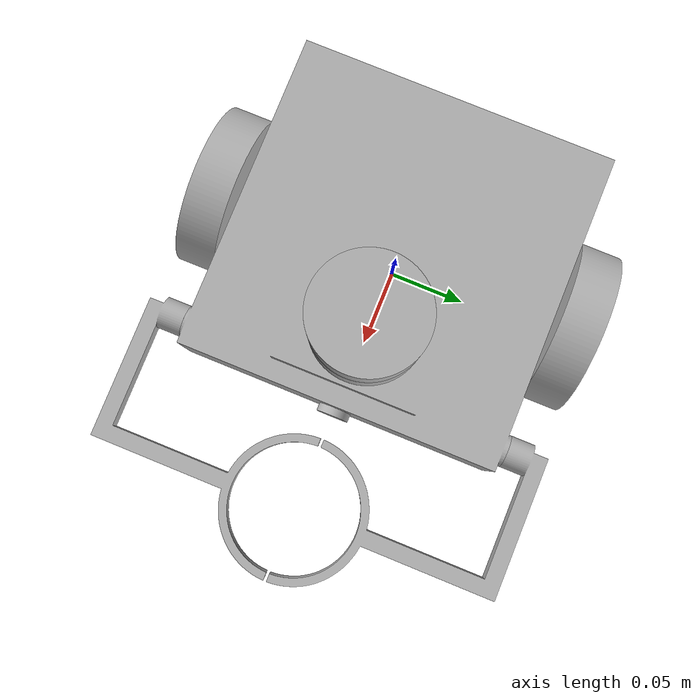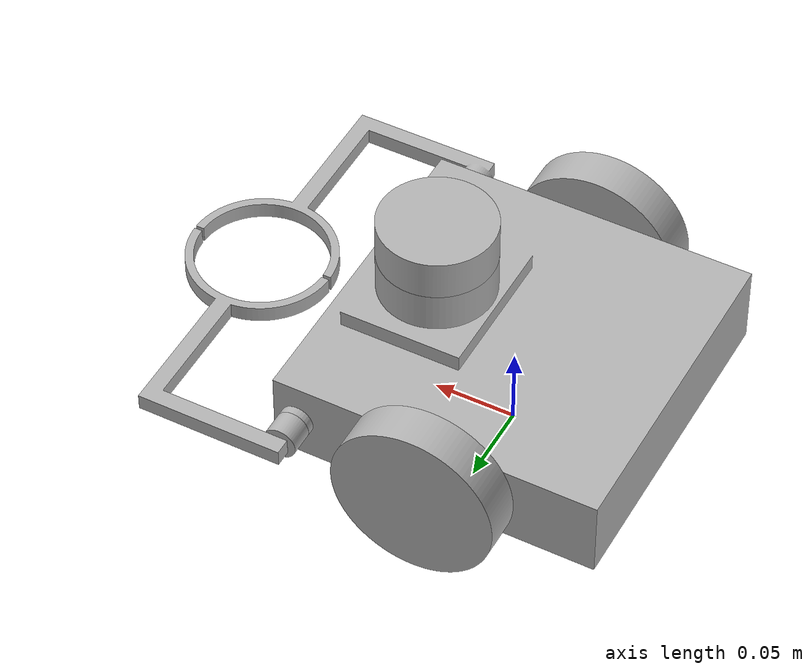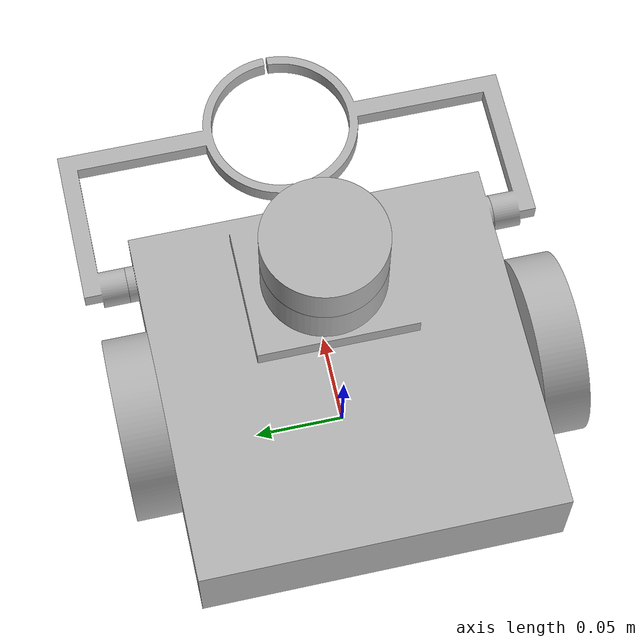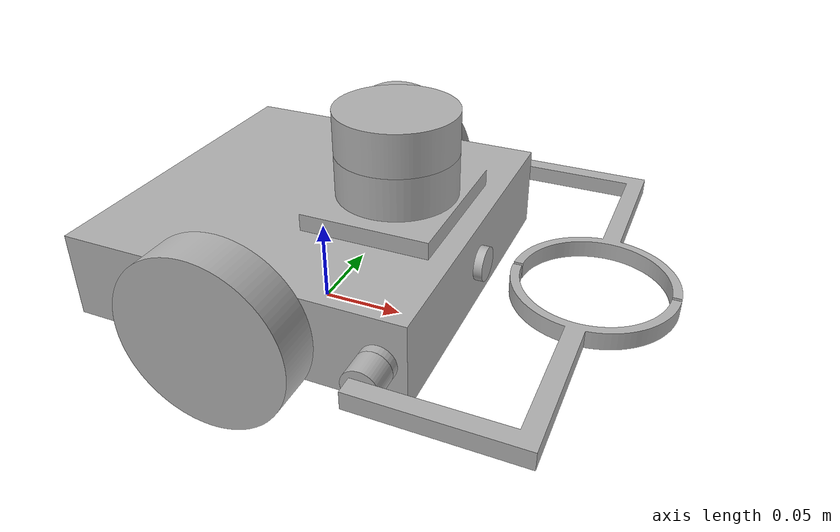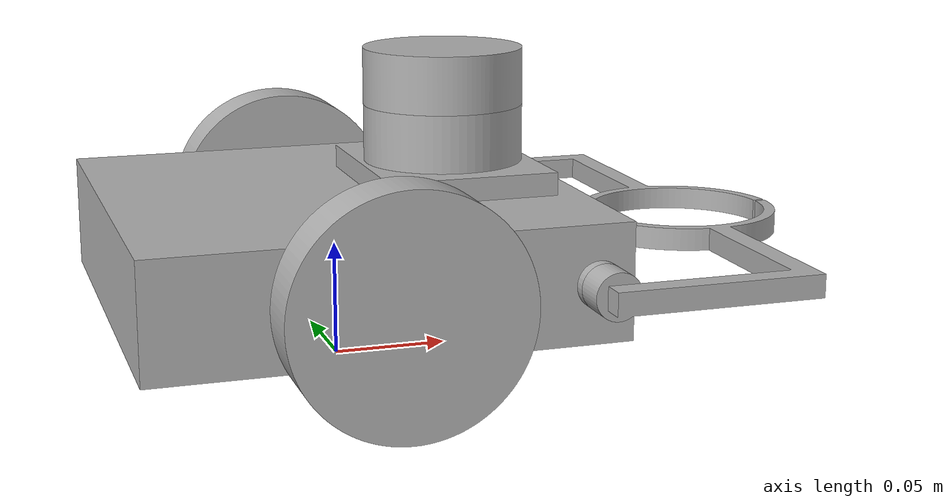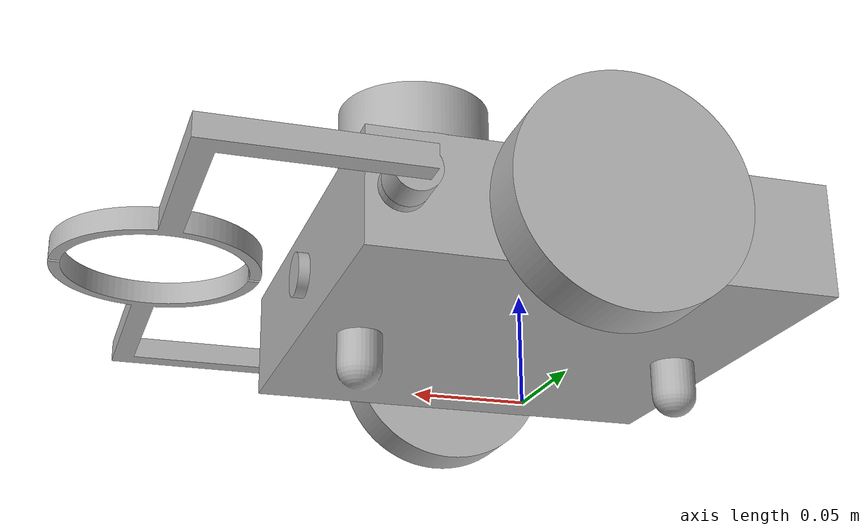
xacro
<?xml version="1.0" ?>
<robot name="s1110834" xmlns:xacro="http://www.ros.org/wiki/xacro">

<xacro:include filename="$(find s1110834_description)/urdf/materials.xacro" />
<xacro:include filename="$(find s1110834_description)/urdf/s1110834.trans" />
<xacro:include filename="$(find s1110834_description)/urdf/s1110834.gazebo" />
<link name="base_link">
  <inertial>
    <origin xyz="0.0038765096254016755 1.6684406360504276e-17 0.05280007552867719" rpy="0 0 0"/>
    <mass value="2.0278337853268598"/>
    <inertia ixx="0.006953" iyy="0.007352" izz="0.013" ixy="-0.0" iyz="0.0" ixz="-0.000285"/>
  </inertial>
  <visual>
    <origin xyz="0 0 0" rpy="0 0 0"/>
    <geometry>
      <mesh filename="package://s1110834_description/meshes/base_link.stl" scale="0.001 0.001 0.001"/>
    </geometry>
    <material name="silver"/>
  </visual>
  <collision>
    <origin xyz="0 0 0" rpy="0 0 0"/>
    <geometry>
      <mesh filename="package://s1110834_description/meshes/base_link.stl" scale="0.001 0.001 0.001"/>
    </geometry>
  </collision>
</link>

<link name="right_wheel_1">
  <inertial>
    <origin xyz="-5.790023100122029e-18 -0.012499999999999997 0.0" rpy="0 0 0"/>
    <mass value="1.541343895667492"/>
    <inertia ixx="0.001044" iyy="0.001927" izz="0.001044" ixy="-0.0" iyz="-0.0" ixz="0.0"/>
  </inertial>
  <visual>
    <origin xyz="-0.0 0.1 -0.05" rpy="0 0 0"/>
    <geometry>
      <mesh filename="package://s1110834_description/meshes/right_wheel_1.stl" scale="0.001 0.001 0.001"/>
    </geometry>
    <material name="silver"/>
  </visual>
  <collision>
    <origin xyz="-0.0 0.1 -0.05" rpy="0 0 0"/>
    <geometry>
      <mesh filename="package://s1110834_description/meshes/right_wheel_1.stl" scale="0.001 0.001 0.001"/>
    </geometry>
  </collision>
</link>

<link name="left_wheel_1">
  <inertial>
    <origin xyz="-5.790023100122029e-18 0.012499999999999997 0.0" rpy="0 0 0"/>
    <mass value="1.541343895667492"/>
    <inertia ixx="0.001044" iyy="0.001927" izz="0.001044" ixy="0.0" iyz="0.0" ixz="0.0"/>
  </inertial>
  <visual>
    <origin xyz="-0.0 -0.1 -0.05" rpy="0 0 0"/>
    <geometry>
      <mesh filename="package://s1110834_description/meshes/left_wheel_1.stl" scale="0.001 0.001 0.001"/>
    </geometry>
    <material name="silver"/>
  </visual>
  <collision>
    <origin xyz="-0.0 -0.1 -0.05" rpy="0 0 0"/>
    <geometry>
      <mesh filename="package://s1110834_description/meshes/left_wheel_1.stl" scale="0.001 0.001 0.001"/>
    </geometry>
  </collision>
</link>

<link name="lidar_1">
  <inertial>
    <origin xyz="0.0 0.0 0.012499999999999997" rpy="0 0 0"/>
    <mass value="0.7552585088770711"/>
    <inertia ixx="0.000271" iyy="0.000271" izz="0.000463" ixy="0.0" iyz="-0.0" ixz="0.0"/>
  </inertial>
  <visual>
    <origin xyz="-0.05 -0.0 -0.11" rpy="0 0 0"/>
    <geometry>
      <mesh filename="package://s1110834_description/meshes/lidar_1.stl" scale="0.001 0.001 0.001"/>
    </geometry>
    <material name="silver"/>
  </visual>
  <collision>
    <origin xyz="-0.05 -0.0 -0.11" rpy="0 0 0"/>
    <geometry>
      <mesh filename="package://s1110834_description/meshes/lidar_1.stl" scale="0.001 0.001 0.001"/>
    </geometry>
  </collision>
</link>

<link name="camera_1">
  <inertial>
    <origin xyz="0.0024999999999999745 0.0 0.0" rpy="0 0 0"/>
    <mass value="0.012330751165339937"/>
    <inertia ixx="1e-06" iyy="0.0" izz="0.0" ixy="0.0" iyz="0.0" ixz="0.0"/>
  </inertial>
  <visual>
    <origin xyz="-0.1 -0.0 -0.05" rpy="0 0 0"/>
    <geometry>
      <mesh filename="package://s1110834_description/meshes/camera_1.stl" scale="0.001 0.001 0.001"/>
    </geometry>
    <material name="silver"/>
  </visual>
  <collision>
    <origin xyz="-0.1 -0.0 -0.05" rpy="0 0 0"/>
    <geometry>
      <mesh filename="package://s1110834_description/meshes/camera_1.stl" scale="0.001 0.001 0.001"/>
    </geometry>
  </collision>
</link>

<link name="right_beam_1">
  <inertial>
    <origin xyz="0.05348718432810133 0.016679463772907716 6.630514678973576e-10" rpy="0 0 0"/>
    <mass value="0.2182107002580713"/>
    <inertia ixx="0.00035" iyy="0.000294" izz="0.000639" ixy="-0.000175" iyz="-0.0" ixz="-0.0"/>
  </inertial>
  <visual>
    <origin xyz="-0.085 0.105 -0.05" rpy="0 0 0"/>
    <geometry>
      <mesh filename="package://s1110834_description/meshes/right_beam_1.stl" scale="0.001 0.001 0.001"/>
    </geometry>
    <material name="silver"/>
  </visual>
  <collision>
    <origin xyz="-0.085 0.105 -0.05" rpy="0 0 0"/>
    <geometry>
      <mesh filename="package://s1110834_description/meshes/right_beam_1.stl" scale="0.001 0.001 0.001"/>
    </geometry>
  </collision>
</link>

<link name="left_beam_1">
  <inertial>
    <origin xyz="0.053487185451902994 -0.016679463788348767 6.603711674713075e-10" rpy="0 0 0"/>
    <mass value="0.218210708355361"/>
    <inertia ixx="0.00035" iyy="0.000294" izz="0.000639" ixy="0.000175" iyz="0.0" ixz="-0.0"/>
  </inertial>
  <visual>
    <origin xyz="-0.085 -0.105 -0.05" rpy="0 0 0"/>
    <geometry>
      <mesh filename="package://s1110834_description/meshes/left_beam_1.stl" scale="0.001 0.001 0.001"/>
    </geometry>
    <material name="silver"/>
  </visual>
  <collision>
    <origin xyz="-0.085 -0.105 -0.05" rpy="0 0 0"/>
    <geometry>
      <mesh filename="package://s1110834_description/meshes/left_beam_1.stl" scale="0.001 0.001 0.001"/>
    </geometry>
  </collision>
</link>

<joint name="revolute1" type="continuous">
  <origin xyz="0.0 -0.1 0.05" rpy="0 0 0"/>
  <parent link="base_link"/>
  <child link="right_wheel_1"/>
  <axis xyz="0.0 1.0 0.0"/>
</joint>

<joint name="revolute2" type="continuous">
  <origin xyz="0.0 0.1 0.05" rpy="0 0 0"/>
  <parent link="base_link"/>
  <child link="left_wheel_1"/>
  <axis xyz="0.0 1.0 0.0"/>
</joint>

<joint name="Rigid 3" type="fixed">
  <origin xyz="0.05 0.0 0.11" rpy="0 0 0"/>
  <parent link="base_link"/>
  <child link="lidar_1"/>
</joint>

<joint name="Rigid 4" type="fixed">
  <origin xyz="0.1 0.0 0.05" rpy="0 0 0"/>
  <parent link="base_link"/>
  <child link="camera_1"/>
</joint>

<joint name="revolute5" type="continuous">
  <origin xyz="0.085 -0.105 0.05" rpy="0 0 0"/>
  <parent link="base_link"/>
  <child link="right_beam_1"/>
  <axis xyz="0.0 -1.0 0.0"/>
  <limit effort="15.0" velocity="2.0" lower="-1.57" upper="1.57"/>
</joint>

<joint name="revolute6" type="continuous">
  <origin xyz="0.085 0.105 0.05" rpy="0 0 0"/>
  <parent link="base_link"/>
  <child link="left_beam_1"/>
  <axis xyz="0.0 1.0 0.0"/>
  <limit effort="15.0" velocity="2.0" lower="-1.57" upper="1.57"/>
</joint>

</robot>

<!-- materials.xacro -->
<robot name="s1110834" xmlns:xacro="http://www.ros.org/wiki/xacro" >

<material name="silver">
  <color rgba="0.700 0.700 0.700 1.000"/>
</material>

</robot>

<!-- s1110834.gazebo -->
<robot name="s1110834" xmlns:xacro="http://www.ros.org/wiki/xacro" >

<xacro:property name="body_color" value="Gazebo/Silver" />

<gazebo>
  <plugin name="control" filename="libgazebo_ros_control.so"/>
</gazebo>
<gazebo reference="base_link">
  <material>${body_color}</material>
  <mu1>0.2</mu1>
  <mu2>0.2</mu2>
  <selfCollide>true</selfCollide>
  <gravity>true</gravity>
</gazebo>

<gazebo reference="right_wheel_1">
  <material>${body_color}</material>
  <mu1>0.2</mu1>
  <mu2>0.2</mu2>
  <selfCollide>true</selfCollide>
</gazebo>

<gazebo reference="left_wheel_1">
  <material>${body_color}</material>
  <mu1>0.2</mu1>
  <mu2>0.2</mu2>
  <selfCollide>true</selfCollide>
</gazebo>

<gazebo reference="lidar_1">
  <material>${body_color}</material>
  <mu1>0.2</mu1>
  <mu2>0.2</mu2>
  <selfCollide>true</selfCollide>
</gazebo>

<gazebo reference="camera_1">
  <material>${body_color}</material>
  <mu1>0.2</mu1>
  <mu2>0.2</mu2>
  <selfCollide>true</selfCollide>
</gazebo>

<gazebo reference="right_beam_1">
  <material>${body_color}</material>
  <mu1>0.2</mu1>
  <mu2>0.2</mu2>
  <selfCollide>true</selfCollide>
</gazebo>

<gazebo reference="left_beam_1">
  <material>${body_color}</material>
  <mu1>0.2</mu1>
  <mu2>0.2</mu2>
  <selfCollide>true</selfCollide>
</gazebo>

</robot>
